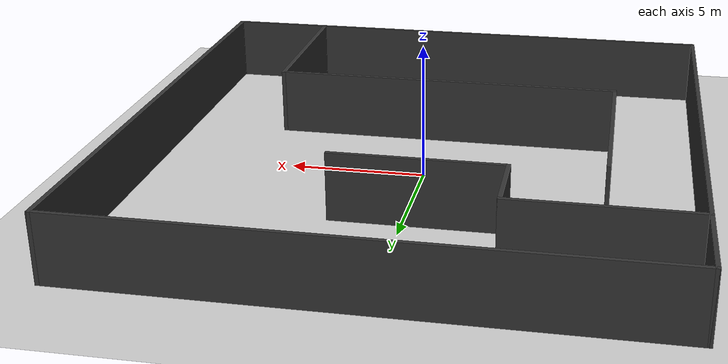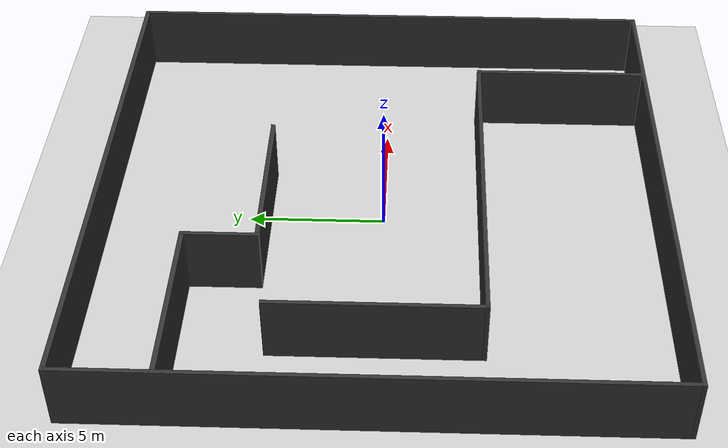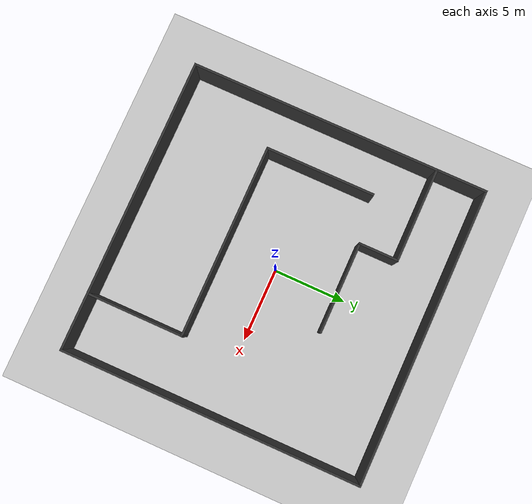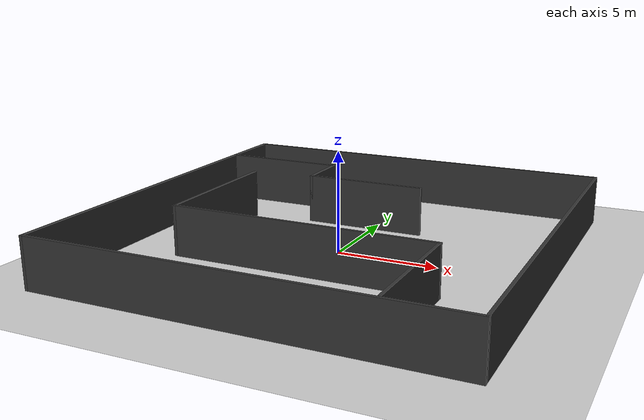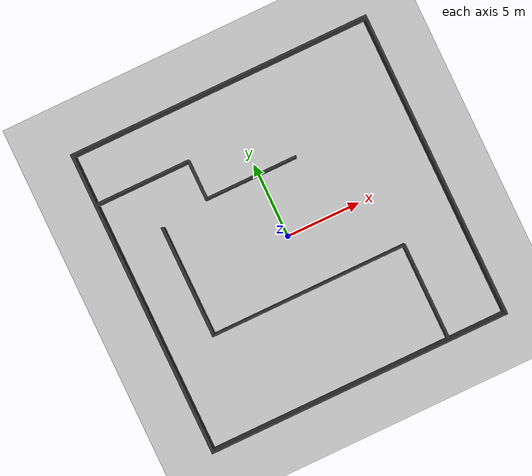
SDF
<?xml version="1.0" ?>
<sdf version="1.8">
    <world name="room">
        <physics name="1ms" type="ignored">
            <max_step_size>0.001</max_step_size>
            <real_time_factor>1.0</real_time_factor>
        </physics>
        <plugin
            filename="ignition-gazebo-physics-system"
            name="ignition::gazebo::systems::Physics">
        </plugin>
        <plugin
            filename="ignition-gazebo-user-commands-system"
            name="ignition::gazebo::systems::UserCommands">
        </plugin>
        <plugin
            filename="ignition-gazebo-scene-broadcaster-system"
            name="ignition::gazebo::systems::SceneBroadcaster">
        </plugin>
        <plugin filename="ignition-gazebo-imu-system"
                name="ignition::gazebo::systems::Imu">
        </plugin>
        <plugin filename="ignition-gazebo-sensors-system"
                name="ignition::gazebo::systems::Sensors">
            <render_engine>ogre2</render_engine>
        </plugin>
        <plugin filename="ignition-gazebo-contact-system"
                name="ignition::gazebo::systems::Contact">
        </plugin>
        <gui fullscreen="0">
          <!-- 3D scene -->
          <plugin filename="MinimalScene" name="3D View">
          <ignition-gui>
            <title>3D View</title>
            <property type="bool" key="showTitleBar">false</property>
            <property type="string" key="state">docked</property>
          </ignition-gui>

          <engine>ogre2</engine>
          <scene>scene</scene>
          <ambient_light>0.4 0.4 0.4</ambient_light>
          <background_color>0.8 0.8 0.8</background_color>
          <camera_pose>-6 0 6 0 0.5 0</camera_pose>
          <camera_clip>
            <near>0.25</near>
            <far>25000</far>
          </camera_clip>
          </plugin>

          <!-- Plugins that add functionality to the scene -->
          <plugin filename="EntityContextMenuPlugin" name="Entity context menu">
          <ignition-gui>
            <property key="state" type="string">floating</property>
            <property key="width" type="double">5</property>
            <property key="height" type="double">5</property>
            <property key="showTitleBar" type="bool">false</property>
          </ignition-gui>
          </plugin>
          <plugin filename="GzSceneManager" name="Scene Manager">
          <ignition-gui>
            <property key="resizable" type="bool">false</property>
            <property key="width" type="double">5</property>
            <property key="height" type="double">5</property>
            <property key="state" type="string">floating</property>
            <property key="showTitleBar" type="bool">false</property>
          </ignition-gui>
          </plugin>
          <plugin filename="InteractiveViewControl" name="Interactive view control">
          <ignition-gui>
            <property key="resizable" type="bool">false</property>
            <property key="width" type="double">5</property>
            <property key="height" type="double">5</property>
            <property key="state" type="string">floating</property>
            <property key="showTitleBar" type="bool">false</property>
          </ignition-gui>
          </plugin>
          <plugin filename="CameraTracking" name="Camera Tracking">
          <ignition-gui>
            <property key="resizable" type="bool">false</property>
            <property key="width" type="double">5</property>
            <property key="height" type="double">5</property>
            <property key="state" type="string">floating</property>
            <property key="showTitleBar" type="bool">false</property>
          </ignition-gui>
          </plugin>
          <plugin filename="MarkerManager" name="Marker manager">
          <ignition-gui>
            <property key="resizable" type="bool">false</property>
            <property key="width" type="double">5</property>
            <property key="height" type="double">5</property>
            <property key="state" type="string">floating</property>
            <property key="showTitleBar" type="bool">false</property>
          </ignition-gui>
          </plugin>
          <plugin filename="SelectEntities" name="Select Entities">
          <ignition-gui>
            <anchors target="Select entities">
              <line own="right" target="right"/>
              <line own="top" target="top"/>
            </anchors>
            <property key="resizable" type="bool">false</property>
            <property key="width" type="double">5</property>
            <property key="height" type="double">5</property>
            <property key="state" type="string">floating</property>
            <property key="showTitleBar" type="bool">false</property>
          </ignition-gui>
          </plugin>
          <plugin filename="VisualizationCapabilities" name="Visualization Capabilities">
          <ignition-gui>
            <property key="resizable" type="bool">false</property>
            <property key="width" type="double">5</property>
            <property key="height" type="double">5</property>
            <property key="state" type="string">floating</property>
            <property key="showTitleBar" type="bool">false</property>
          </ignition-gui>
          </plugin>

          <plugin filename="Spawn" name="Spawn Entities">
          <ignition-gui>
            <anchors target="Select entities">
              <line own="right" target="right"/>
              <line own="top" target="top"/>
            </anchors>
            <property key="resizable" type="bool">false</property>
            <property key="width" type="double">5</property>
            <property key="height" type="double">5</property>
            <property key="state" type="string">floating</property>
            <property key="showTitleBar" type="bool">false</property>
          </ignition-gui>
          </plugin>

          <!-- World control -->
          <plugin filename="WorldControl" name="World control">
          <ignition-gui>
            <title>World control</title>
            <property type="bool" key="showTitleBar">false</property>
            <property type="bool" key="resizable">false</property>
            <property type="double" key="height">72</property>
            <property type="double" key="width">121</property>
            <property type="double" key="z">1</property>

            <property type="string" key="state">floating</property>
            <anchors target="3D View">
              <line own="left" target="left"/>
              <line own="bottom" target="bottom"/>
            </anchors>
          </ignition-gui>

          <play_pause>true</play_pause>
          <step>true</step>
          <start_paused>true</start_paused>
          <use_event>true</use_event>

          </plugin>

          <!-- World statistics -->
          <plugin filename="WorldStats" name="World stats">
          <ignition-gui>
            <title>World stats</title>
            <property type="bool" key="showTitleBar">false</property>
            <property type="bool" key="resizable">false</property>
            <property type="double" key="height">110</property>
            <property type="double" key="width">290</property>
            <property type="double" key="z">1</property>

            <property type="string" key="state">floating</property>
            <anchors target="3D View">
              <line own="right" target="right"/>
              <line own="bottom" target="bottom"/>
            </anchors>
          </ignition-gui>

          <sim_time>true</sim_time>
          <real_time>true</real_time>
          <real_time_factor>true</real_time_factor>
          <iterations>true</iterations>
          </plugin>Untitled

          <plugin
            filename="VisualizeLidar"
            name="Visualize Lidar">
          </plugin>

          <!-- Insert simple shapes -->
          <plugin filename="Shapes" name="Shapes">
          <ignition-gui>
            <property key="resizable" type="bool">false</property>
            <property key="x" type="double">0</property>
            <property key="y" type="double">0</property>
            <property key="width" type="double">250</property>
            <property key="height" type="double">50</property>
            <property key="state" type="string">floating</property>
            <property key="showTitleBar" type="bool">false</property>
            <property key="cardBackground" type="string">#666666</property>
          </ignition-gui>
          </plugin>

          <!-- Insert lights -->
          <plugin filename="Lights" name="Lights">
          <ignition-gui>
            <property key="resizable" type="bool">false</property>
            <property key="x" type="double">250</property>
            <property key="y" type="double">0</property>
            <property key="width" type="double">150</property>
            <property key="height" type="double">50</property>
            <property key="state" type="string">floating</property>
            <property key="showTitleBar" type="bool">false</property>
            <property key="cardBackground" type="string">#666666</property>
          </ignition-gui>
          </plugin>

          <!-- Translate / rotate -->
          <plugin filename="TransformControl" name="Transform control">
          <ignition-gui>
            <property key="resizable" type="bool">false</property>
            <property key="x" type="double">0</property>
            <property key="y" type="double">50</property>
            <property key="width" type="double">250</property>
            <property key="height" type="double">50</property>
            <property key="state" type="string">floating</property>
            <property key="showTitleBar" type="bool">false</property>
            <property key="cardBackground" type="string">#777777</property>
          </ignition-gui>
          </plugin>

          <!-- Screenshot -->
          <plugin filename="Screenshot" name="Screenshot">
          <ignition-gui>
            <property key="resizable" type="bool">false</property>
            <property key="x" type="double">250</property>
            <property key="y" type="double">50</property>
            <property key="width" type="double">50</property>
            <property key="height" type="double">50</property>
            <property key="state" type="string">floating</property>
            <property key="showTitleBar" type="bool">false</property>
            <property key="cardBackground" type="string">#777777</property>
          </ignition-gui>
          </plugin>

          <!-- Video recorder -->
          <plugin filename="VideoRecorder" name="VideoRecorder">
          <ignition-gui>
            <property key="resizable" type="bool">false</property>
            <property key="x" type="double">300</property>
            <property key="y" type="double">50</property>
            <property key="width" type="double">50</property>
            <property key="height" type="double">50</property>
            <property key="state" type="string">floating</property>
            <property key="showTitleBar" type="bool">false</property>
            <property key="cardBackground" type="string">#777777</property>
          </ignition-gui>

          <record_video>
            <use_sim_time>true</use_sim_time>
            <lockstep>false</lockstep>
            <bitrate>4000000</bitrate>
          </record_video>
          </plugin>

          <!-- Inspector -->
          <plugin filename="ComponentInspector" name="Component inspector">
          <ignition-gui>
            <property type="string" key="state">docked_collapsed</property>
          </ignition-gui>
          </plugin>

          <!-- Entity tree -->
          <plugin filename="EntityTree" name="Entity tree">
          <ignition-gui>
            <property type="string" key="state">docked_collapsed</property>
          </ignition-gui>
          </plugin>

          <!-- View angle -->
          <plugin filename="ViewAngle" name="View angle">
          <ignition-gui>
            <property type="string" key="state">docked_collapsed</property>
          </ignition-gui>
          </plugin>

            <!-- KeyPublisher plugin-->

        </gui>

        <light type="directional" name="sun">
            <cast_shadows>true</cast_shadows>
            <pose>0 0 10 0 0 0</pose>
            <diffuse>0.8 0.8 0.8 1</diffuse>
            <specular>0.2 0.2 0.2 1</specular>
            <attenuation>
                <range>1000</range>
                <constant>0.9</constant>
                <linear>0.01</linear>
                <quadratic>0.001</quadratic>
            </attenuation>
            <direction>-0.5 0.1 -0.9</direction>
        </light>

        <model name="ground_plane">
            <static>true</static>
            <link name="link">
                <collision name="collision">
                <geometry>
                    <plane>
                    <normal>0 0 1</normal>
                    </plane>
                </geometry>
                </collision>
                <visual name="visual">
                <geometry>
                    <plane>
                    <normal>0 0 1</normal>
                    <size>100 100</size>
                    </plane>
                </geometry>
                <material>
                    <ambient>0.8 0.8 0.8 1</ambient>
                    <diffuse>0.8 0.8 0.8 1</diffuse>
                    <specular>0.8 0.8 0.8 1</specular>
                </material>
                </visual>
            </link>
        </model>
    <include>
      <uri>model://room</uri>
      <name>Room</name>
    </include>

    </world>
</sdf>

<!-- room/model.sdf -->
<sdf version='1.8'>
  <model name='room'>
    <pose>0.123559 0.081528 0 0 -0 0</pose>
    <link name='Wall_15'>
      <collision name='Wall_15_Collision'>
        <geometry>
          <box>
            <size>20.25 0.15 2.5</size>
          </box>
        </geometry>
        <pose>0 0 1.25 0 -0 0</pose>
      </collision>
      <visual name='Wall_15_Visual'>
        <pose>0 0 1.25 0 -0 0</pose>
        <geometry>
          <box>
            <size>20.25 0.15 2.5</size>
          </box>
        </geometry>
        <material>
  <ambient>0.2 0.2 0.2 1</ambient>
  <diffuse>0.2 0.2 0.2 1</diffuse>
  <specular>0.1 0.1 0.1 1</specular>
</material>
      </visual>
      <pose>0 10.175 0 0 -0 0</pose>
    </link>
    <link name='Wall_16'>
      <collision name='Wall_16_Collision'>
        <geometry>
          <box>
            <size>20.5 0.15 2.5</size>
          </box>
        </geometry>
        <pose>0 0 1.25 0 -0 0</pose>
      </collision>
      <visual name='Wall_16_Visual'>
        <pose>0 0 1.25 0 -0 0</pose>
        <geometry>
          <box>
            <size>20.5 0.15 2.5</size>
          </box>
        </geometry>
        <material>
  <ambient>0.2 0.2 0.2 1</ambient>
  <diffuse>0.2 0.2 0.2 1</diffuse>
  <specular>0.1 0.1 0.1 1</specular>
</material>
      </visual>
      <pose>10.05 -0 0 0 -0 -1.5708</pose>
    </link>
    <link name='Wall_17'>
      <collision name='Wall_17_Collision'>
        <geometry>
          <box>
            <size>20.25 0.15 2.5</size>
          </box>
        </geometry>
        <pose>0 0 1.25 0 -0 0</pose>
      </collision>
      <visual name='Wall_17_Visual'>
        <pose>0 0 1.25 0 -0 0</pose>
        <geometry>
          <box>
            <size>20.25 0.15 2.5</size>
          </box>
        </geometry>
        <material>
  <ambient>0.2 0.2 0.2 1</ambient>
  <diffuse>0.2 0.2 0.2 1</diffuse>
  <specular>0.1 0.1 0.1 1</specular>
</material>
      </visual>
      <pose>0 -10.175 0 0 -0 3.14159</pose>
    </link>
    <link name='Wall_18'>
      <collision name='Wall_18_Collision'>
        <geometry>
          <box>
            <size>20.5 0.15 2.5</size>
          </box>
        </geometry>
        <pose>0 0 1.25 0 -0 0</pose>
      </collision>
      <visual name='Wall_18_Visual'>
        <pose>0 0 1.25 0 -0 0</pose>
        <geometry>
          <box>
            <size>20.5 0.15 2.5</size>
          </box>
        </geometry>
        <material>
  <ambient>0.2 0.2 0.2 1</ambient>
  <diffuse>0.2 0.2 0.2 1</diffuse>
  <specular>0.1 0.1 0.1 1</specular>
</material>
      </visual>
      <pose>-10.05 -0 0 0 -0 1.5708</pose>
    </link>
    <link name='Wall_20'>
      <collision name='Wall_20_Collision'>
        <geometry>
          <box>
            <size>6.5 0.15 2.5</size>
          </box>
        </geometry>
        <pose>0 0 1.25 0 -0 0</pose>
      </collision>
      <visual name='Wall_20_Visual'>
        <pose>0 0 1.25 0 -0 0</pose>
        <geometry>
          <box>
            <size>6.5 0.15 2.5</size>
          </box>
        </geometry>
        <material>
  <ambient>0.2 0.2 0.2 1</ambient>
  <diffuse>0.2 0.2 0.2 1</diffuse>
  <specular>0.1 0.1 0.1 1</specular>
</material>
      </visual>
      <pose>-6.875 6.77673 0 0 -0 0</pose>
    </link>
    <link name='Wall_21'>
      <collision name='Wall_21_Collision'>
        <geometry>
          <box>
            <size>2.75 0.15 2.5</size>
          </box>
        </geometry>
        <pose>0 0 1.25 0 -0 0</pose>
      </collision>
      <visual name='Wall_21_Visual'>
        <pose>0 0 1.25 0 -0 0</pose>
        <geometry>
          <box>
            <size>2.75 0.15 2.5</size>
          </box>
        </geometry>
        <material>
  <ambient>0.2 0.2 0.2 1</ambient>
  <diffuse>0.2 0.2 0.2 1</diffuse>
  <specular>0.1 0.1 0.1 1</specular>
</material>
      </visual>
      <pose>-3.7 5.47673 0 0 -0 -1.5708</pose>
    </link>
    <link name='Wall_22'>
      <collision name='Wall_22_Collision'>
        <geometry>
          <box>
            <size>6.25 0.15 2.5</size>
          </box>
        </geometry>
        <pose>0 0 1.25 0 -0 0</pose>
      </collision>
      <visual name='Wall_22_Visual'>
        <pose>0 0 1.25 0 -0 0</pose>
        <geometry>
          <box>
            <size>6.25 0.15 2.5</size>
          </box>
        </geometry>
        <material>
  <ambient>0.2 0.2 0.2 1</ambient>
  <diffuse>0.2 0.2 0.2 1</diffuse>
  <specular>0.1 0.1 0.1 1</specular>
</material>
      </visual>
      <pose>-0.65 4.17673 0 0 -0 0</pose>
    </link>
    <link name='Wall_24'>
      <collision name='Wall_24_Collision'>
        <geometry>
          <box>
            <size>6.5 0.15 2.5</size>
          </box>
        </geometry>
        <pose>0 0 1.25 0 -0 0</pose>
      </collision>
      <visual name='Wall_24_Visual'>
        <pose>0 0 1.25 0 -0 0</pose>
        <geometry>
          <box>
            <size>6.5 0.15 2.5</size>
          </box>
        </geometry>
        <material>
  <ambient>0.2 0.2 0.2 1</ambient>
  <diffuse>0.2 0.2 0.2 1</diffuse>
  <specular>0.1 0.1 0.1 1</specular>
</material>
      </visual>
      <pose>6.17269 -6.83733 0 0 -0 1.5708</pose>
    </link>
    <link name='Wall_25'>
      <collision name='Wall_25_Collision'>
        <geometry>
          <box>
            <size>13.25 0.15 2.5</size>
          </box>
        </geometry>
        <pose>0 0 1.25 0 -0 0</pose>
      </collision>
      <visual name='Wall_25_Visual'>
        <pose>0 0 1.25 0 -0 0</pose>
        <geometry>
          <box>
            <size>13.25 0.15 2.5</size>
          </box>
        </geometry>
        <material>
  <ambient>0.2 0.2 0.2 1</ambient>
  <diffuse>0.2 0.2 0.2 1</diffuse>
  <specular>0.1 0.1 0.1 1</specular>
</material>
      </visual>
      <pose>-0.377313 -3.66233 0 0 -0 3.14159</pose>
    </link>
    <link name='Wall_26'>
      <collision name='Wall_26_Collision'>
        <geometry>
          <box>
            <size>7.5 0.15 2.5</size>
          </box>
        </geometry>
        <pose>0 0 1.25 0 -0 0</pose>
      </collision>
      <visual name='Wall_26_Visual'>
        <pose>0 0 1.25 0 -0 0</pose>
        <geometry>
          <box>
            <size>7.5 0.15 2.5</size>
          </box>
        </geometry>
        <material>
  <ambient>0.2 0.2 0.2 1</ambient>
  <diffuse>0.2 0.2 0.2 1</diffuse>
  <specular>0.1 0.1 0.1 1</specular>
</material>
      </visual>
      <pose>-6.92731 0.012667 0 0 -0 1.5708</pose>
    </link>
    <static>1</static>
  </model>
</sdf>
